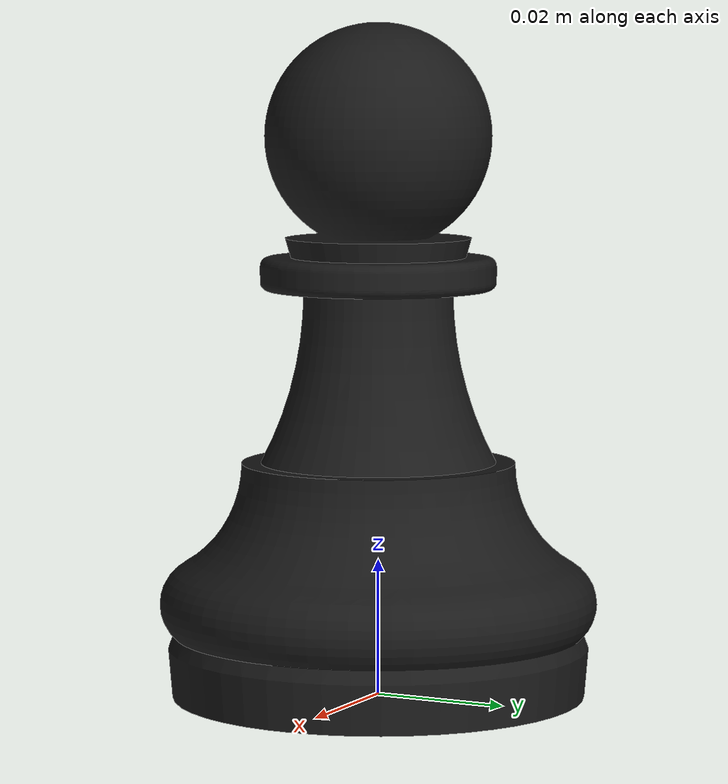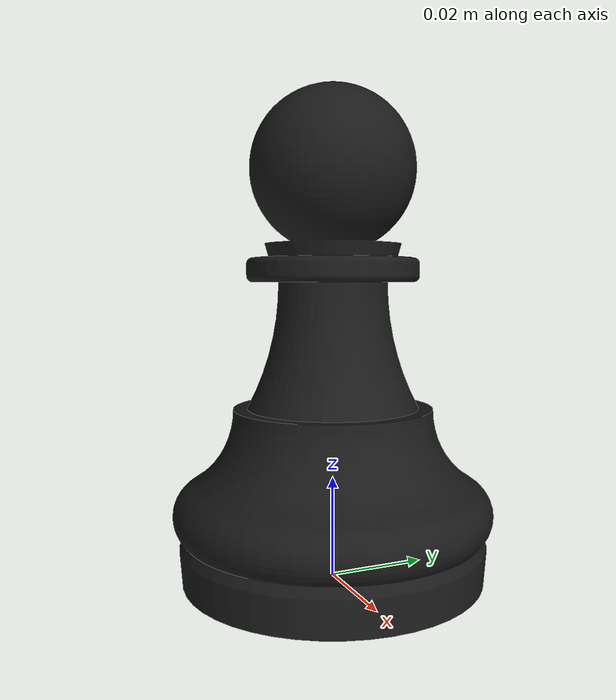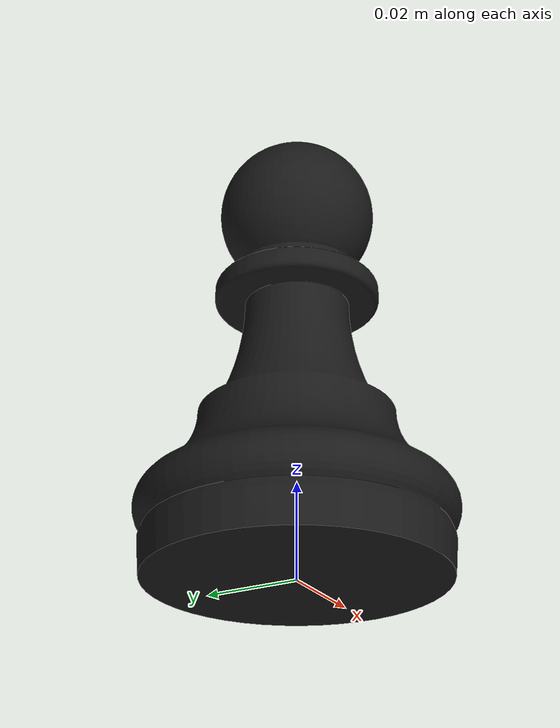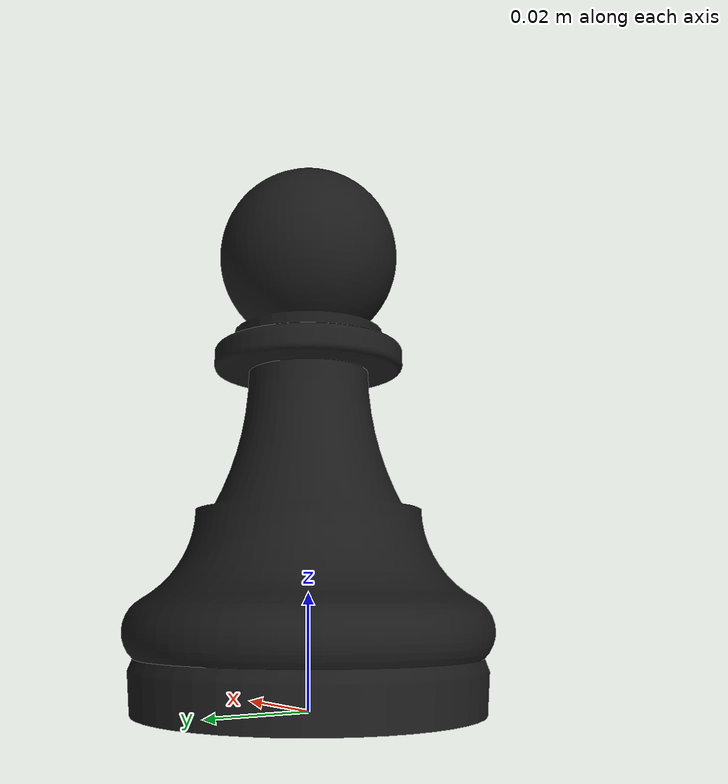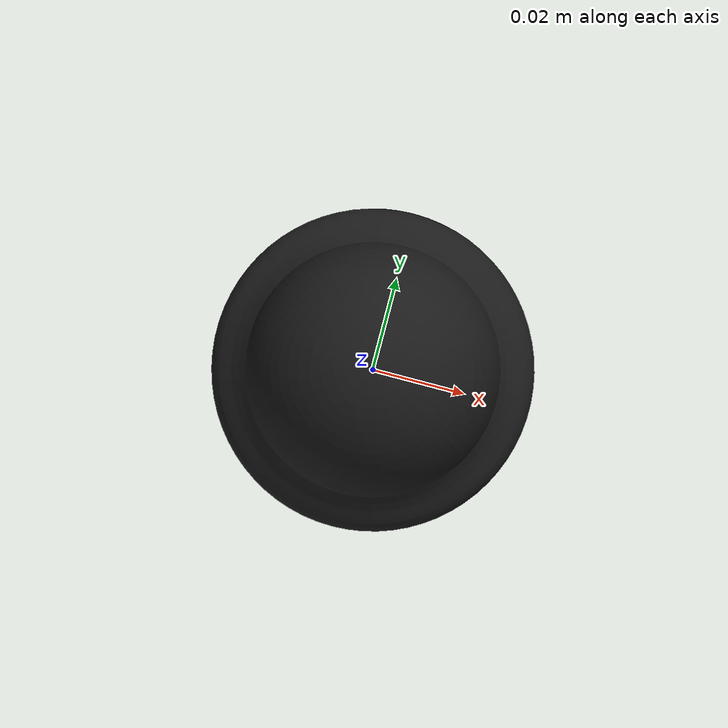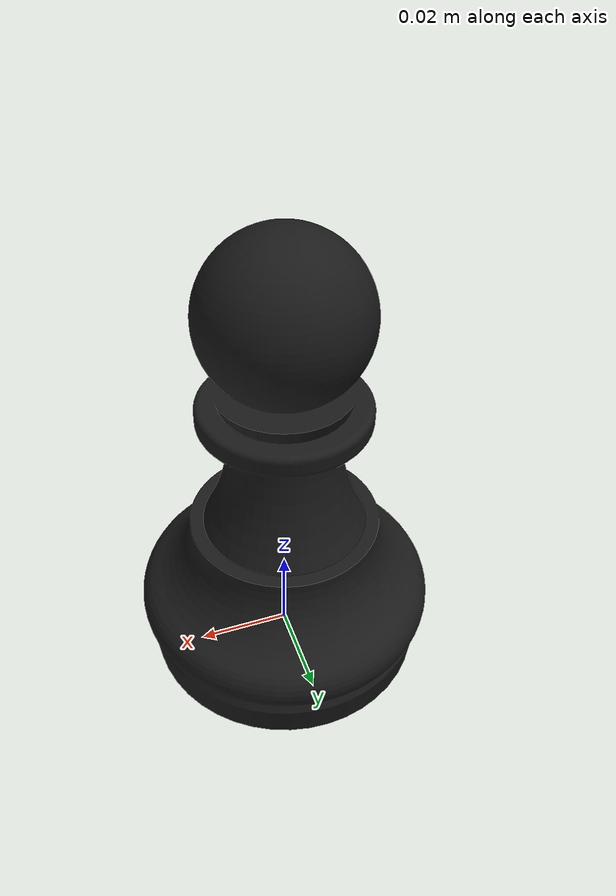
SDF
<?xml version='1.0'?>
<sdf version='1.7'>
  <model name='black_pawn'>
    <link name='link_0'>
      <inertial>
        <mass>0.01</mass>
        <inertia>
          <ixx>0.166667</ixx>
          <ixy>0</ixy>
          <ixz>0</ixz>
          <iyy>0.166667</iyy>
          <iyz>0</iyz>
          <izz>0.166667</izz>
        </inertia>
        <pose>0 0 0 0 -0 0</pose>
      </inertial>
      <pose>0 0 0 0 -0 0</pose>
      <gravity>1</gravity>
      <self_collide>0</self_collide>
      <kinematic>0</kinematic>
      <visual name='visual'>
        <pose>0 0 0 1.5708 0 0</pose>
        <geometry>
          <mesh>
            <uri>/workspaces/CheckMate-6.4210-final-project/src/models/pieces/pawns/pawn_mesh.obj</uri>
            <scale>4 4 4</scale>
          </mesh>
        </geometry>
        <material>
          <ambient>0.05 0.05 0.05 1</ambient>
          <diffuse>0.1 0.1 0.1 1</diffuse>
          <specular>0 0 0 1</specular>
        </material>
      </visual>
      <collision name='collision'>
        <laser_retro>0</laser_retro>
        <pose>0 0 0 1.5708 0 0</pose>
        <geometry>
          <mesh>
            <uri>/workspaces/CheckMate-6.4210-final-project/src/models/pieces/pawns/pawn_mesh.obj</uri>
            <scale>4 4 4</scale>
          </mesh>
        </geometry>
        <surface>
          <friction>
            <ode>
              <mu>1</mu>
              <mu2>1</mu2>
              <fdir1>0 0 0</fdir1>
              <slip1>0</slip1>
              <slip2>0</slip2>
            </ode>
            <torsional>
              <coefficient>1</coefficient>
              <patch_radius>0</patch_radius>
              <surface_radius>0</surface_radius>
              <use_patch_radius>1</use_patch_radius>
              <ode>
                <slip>0</slip>
              </ode>
            </torsional>
          </friction>
          <bounce>
            <restitution_coefficient>0</restitution_coefficient>
            <threshold>1e+06</threshold>
          </bounce>
          <contact>
            <collide_without_contact>0</collide_without_contact>
            <collide_without_contact_bitmask>1</collide_without_contact_bitmask>
            <collide_bitmask>1</collide_bitmask>
            <ode>
              <soft_cfm>0</soft_cfm>
              <soft_erp>0.2</soft_erp>
              <kp>1e+13</kp>
              <kd>1</kd>
              <max_vel>0.01</max_vel>
              <min_depth>0</min_depth>
            </ode>
            <bullet>
              <split_impulse>1</split_impulse>
              <split_impulse_penetration_threshold>-0.01</split_impulse_penetration_threshold>
              <soft_cfm>0</soft_cfm>
              <soft_erp>0.2</soft_erp>
              <kp>1e+13</kp>
              <kd>1</kd>
            </bullet>
          </contact>
        </surface>
      </collision>
    </link>
    <static>0</static>
  </model>
</sdf>
